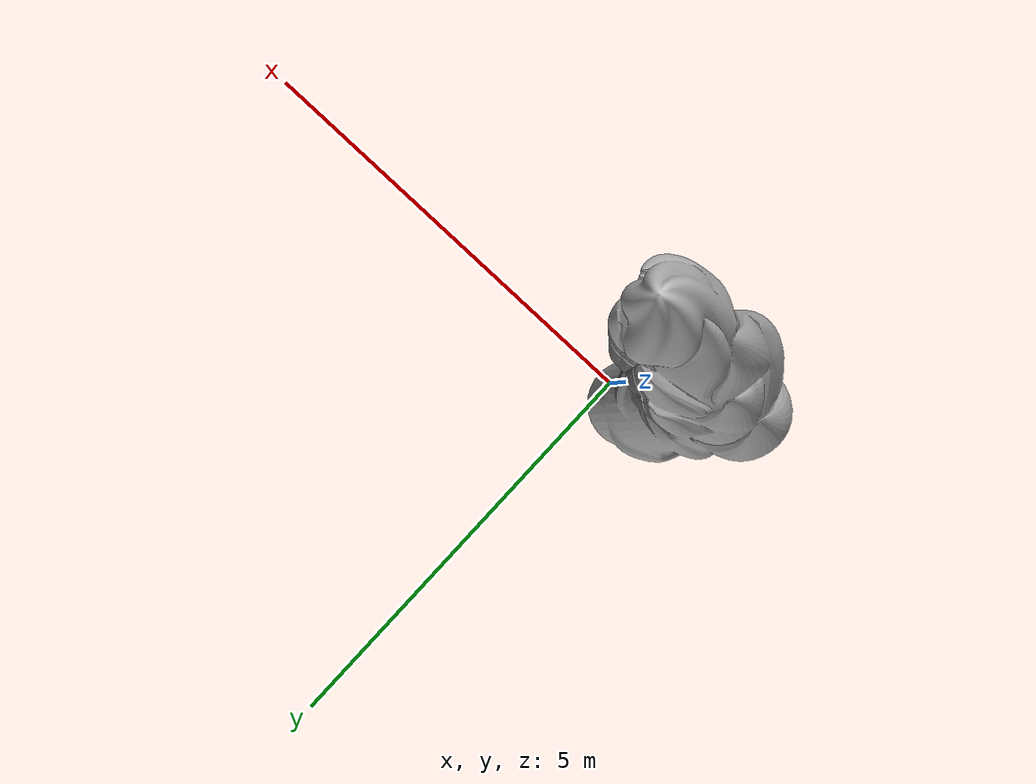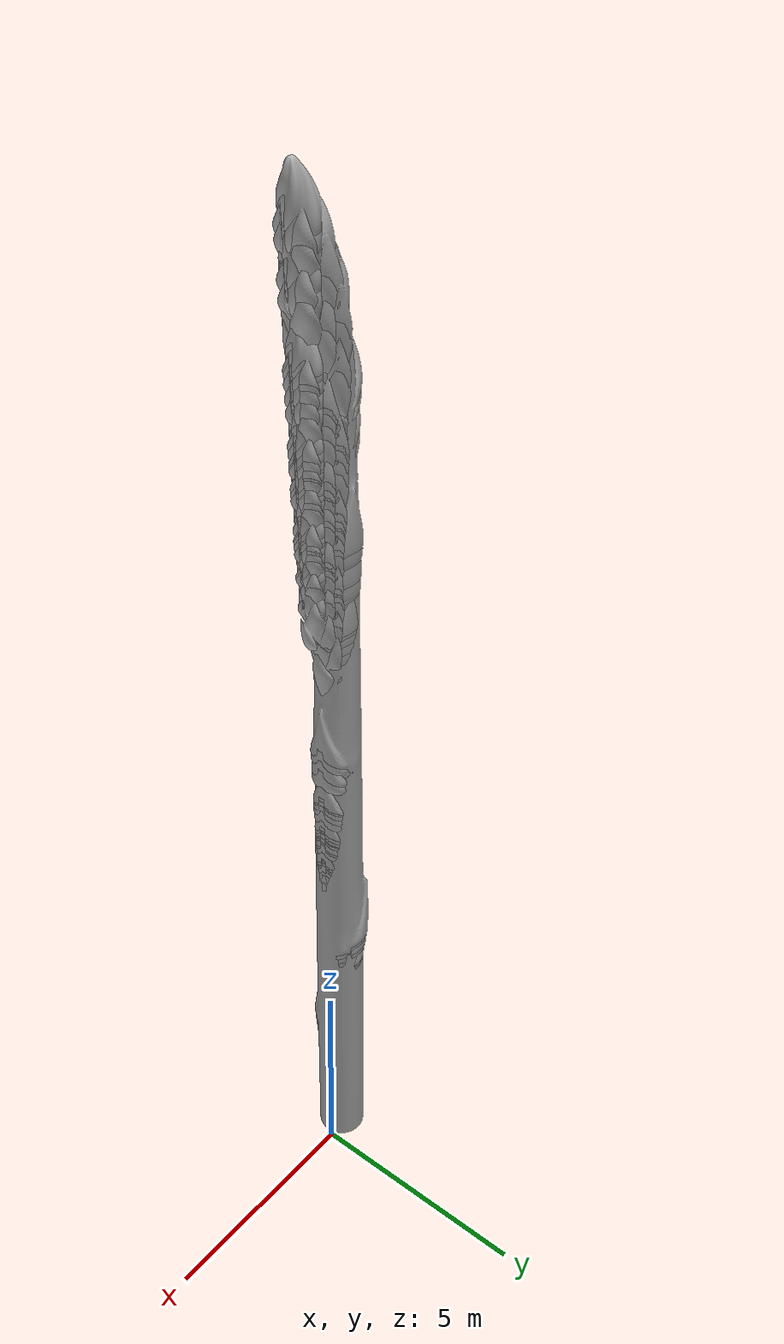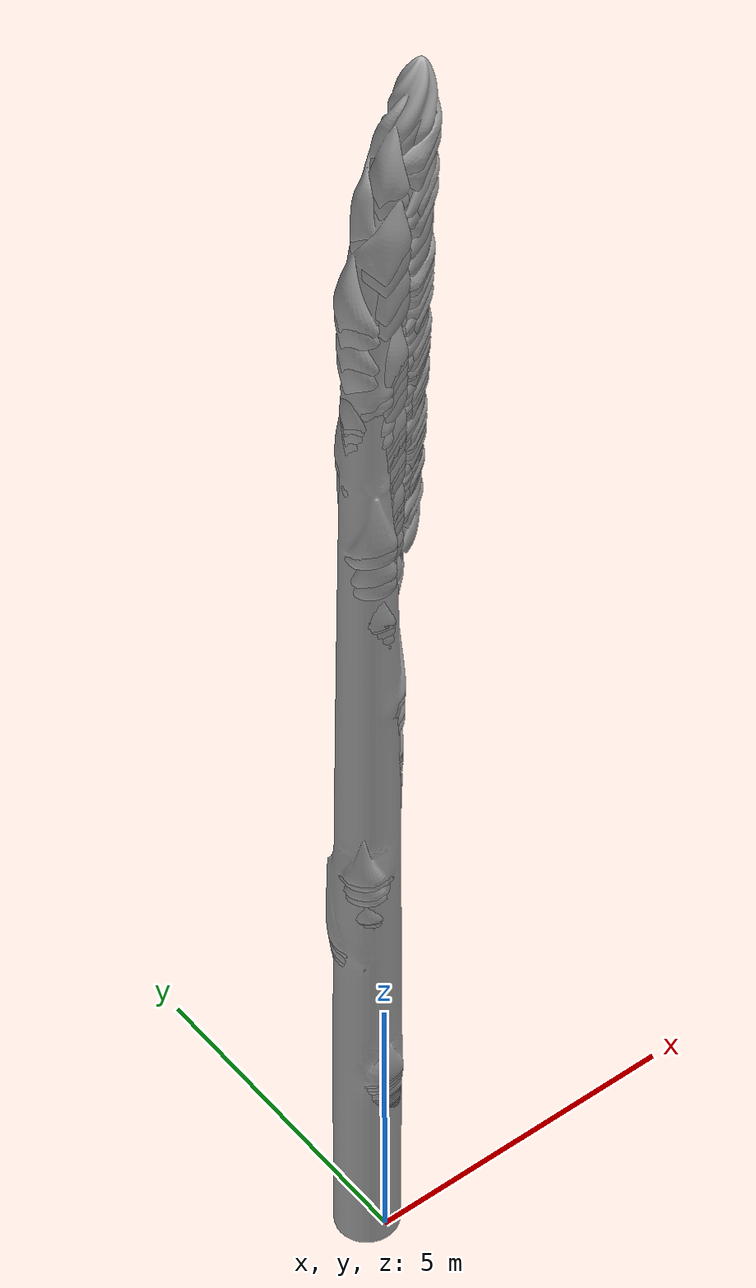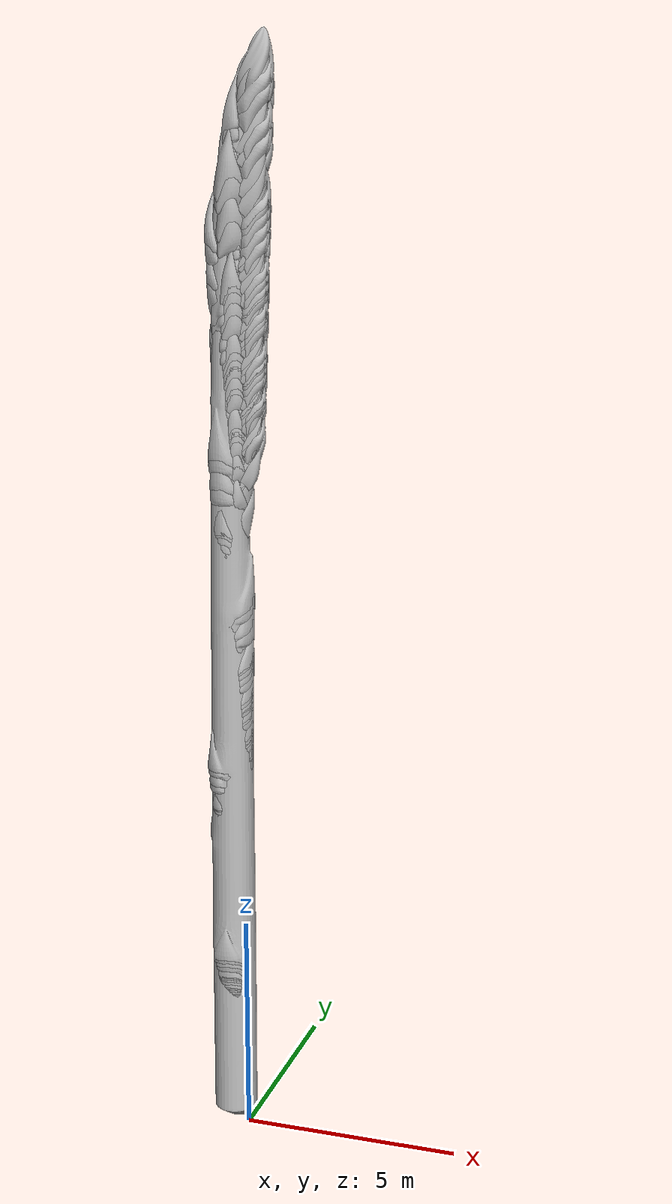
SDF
<sdf version="1.6">
 <world name="default">
  <model name="asparagus_25">
   <static>1</static>
   <link name="asparagus_25">
    <visual name="visual">
     <geometry>
      <mesh>
       <uri>home/adeeb/asparagus_ws/src/models/Asparagus/meshes/asparagus.obj</uri>
       <scale>0.960044 0.960044 0.960044</scale>
      </mesh>
     </geometry>
    </visual>
    <collision name="collision">
     <geometry>
      <mesh>
       <uri>home/adeeb/asparagus_ws/src/models/Asparagus/meshes/asparagus.obj</uri>
       <scale>0.960044 0.960044 0.960044</scale>
      </mesh>
     </geometry>
    </collision>
   </link>
  </model>
  <model name="asparagus_26">
   <static>1</static>
   <link name="asparagus_26">
    <visual name="visual">
     <geometry>
      <mesh>
       <uri>home/adeeb/asparagus_ws/src/models/Asparagus/meshes/asparagus.obj</uri>
       <scale>0.939981 0.939981 0.939981</scale>
      </mesh>
     </geometry>
    </visual>
    <collision name="collision">
     <geometry>
      <mesh>
       <uri>home/adeeb/asparagus_ws/src/models/Asparagus/meshes/asparagus.obj</uri>
       <scale>0.939981 0.939981 0.939981</scale>
      </mesh>
     </geometry>
    </collision>
   </link>
  </model>
  <model name="asparagus_27">
   <static>1</static>
   <link name="asparagus_27">
    <visual name="visual">
     <geometry>
      <mesh>
       <uri>home/adeeb/asparagus_ws/src/models/Asparagus/meshes/asparagus.obj</uri>
       <scale>1.11448 1.11448 1.11448</scale>
      </mesh>
     </geometry>
    </visual>
    <collision name="collision">
     <geometry>
      <mesh>
       <uri>home/adeeb/asparagus_ws/src/models/Asparagus/meshes/asparagus.obj</uri>
       <scale>1.11448 1.11448 1.11448</scale>
      </mesh>
     </geometry>
    </collision>
   </link>
  </model>
  <model name="asparagus_28">
   <static>1</static>
   <link name="asparagus_28">
    <visual name="visual">
     <geometry>
      <mesh>
       <uri>home/adeeb/asparagus_ws/src/models/Asparagus/meshes/asparagus.obj</uri>
       <scale>1.16445 1.16445 1.16445</scale>
      </mesh>
     </geometry>
    </visual>
    <collision name="collision">
     <geometry>
      <mesh>
       <uri>home/adeeb/asparagus_ws/src/models/Asparagus/meshes/asparagus.obj</uri>
       <scale>1.16445 1.16445 1.16445</scale>
      </mesh>
     </geometry>
    </collision>
   </link>
  </model>
  <model name="asparagus_29">
   <static>1</static>
   <link name="asparagus_29">
    <visual name="visual">
     <geometry>
      <mesh>
       <uri>home/adeeb/asparagus_ws/src/models/Asparagus/meshes/asparagus.obj</uri>
       <scale>1.05025 1.05025 1.05025</scale>
      </mesh>
     </geometry>
    </visual>
    <collision name="collision">
     <geometry>
      <mesh>
       <uri>home/adeeb/asparagus_ws/src/models/Asparagus/meshes/asparagus.obj</uri>
       <scale>1.05025 1.05025 1.05025</scale>
      </mesh>
     </geometry>
    </collision>
   </link>
  </model>
  <model name="asparagus_30">
   <static>1</static>
   <link name="asparagus_30">
    <visual name="visual">
     <geometry>
      <mesh>
       <uri>home/adeeb/asparagus_ws/src/models/Asparagus/meshes/asparagus.obj</uri>
       <scale>0.92768 0.92768 0.92768</scale>
      </mesh>
     </geometry>
    </visual>
    <collision name="collision">
     <geometry>
      <mesh>
       <uri>home/adeeb/asparagus_ws/src/models/Asparagus/meshes/asparagus.obj</uri>
       <scale>0.92768 0.92768 0.92768</scale>
      </mesh>
     </geometry>
    </collision>
   </link>
  </model>
  <model name="asparagus_31">
   <static>1</static>
   <link name="asparagus_31">
    <visual name="visual">
     <geometry>
      <mesh>
       <uri>home/adeeb/asparagus_ws/src/models/Asparagus/meshes/asparagus.obj</uri>
       <scale>1.02673 1.02673 1.02673</scale>
      </mesh>
     </geometry>
    </visual>
    <collision name="collision">
     <geometry>
      <mesh>
       <uri>home/adeeb/asparagus_ws/src/models/Asparagus/meshes/asparagus.obj</uri>
       <scale>1.02673 1.02673 1.02673</scale>
      </mesh>
     </geometry>
    </collision>
   </link>
  </model>
  <model name="asparagus_32">
   <static>1</static>
   <link name="asparagus_32">
    <visual name="visual">
     <geometry>
      <mesh>
       <uri>home/adeeb/asparagus_ws/src/models/Asparagus/meshes/asparagus.obj</uri>
       <scale>1.013 1.013 1.013</scale>
      </mesh>
     </geometry>
    </visual>
    <collision name="collision">
     <geometry>
      <mesh>
       <uri>home/adeeb/asparagus_ws/src/models/Asparagus/meshes/asparagus.obj</uri>
       <scale>1.013 1.013 1.013</scale>
      </mesh>
     </geometry>
    </collision>
   </link>
  </model>
  <model name="asparagus_33">
   <static>1</static>
   <link name="asparagus_33">
    <visual name="visual">
     <geometry>
      <mesh>
       <uri>home/adeeb/asparagus_ws/src/models/Asparagus/meshes/asparagus.obj</uri>
       <scale>0.812996 0.812996 0.812996</scale>
      </mesh>
     </geometry>
    </visual>
    <collision name="collision">
     <geometry>
      <mesh>
       <uri>home/adeeb/asparagus_ws/src/models/Asparagus/meshes/asparagus.obj</uri>
       <scale>0.812996 0.812996 0.812996</scale>
      </mesh>
     </geometry>
    </collision>
   </link>
  </model>
  <model name="asparagus_34">
   <static>1</static>
   <link name="asparagus_34">
    <visual name="visual">
     <geometry>
      <mesh>
       <uri>home/adeeb/asparagus_ws/src/models/Asparagus/meshes/asparagus.obj</uri>
       <scale>0.879051 0.879051 0.879051</scale>
      </mesh>
     </geometry>
    </visual>
    <collision name="collision">
     <geometry>
      <mesh>
       <uri>home/adeeb/asparagus_ws/src/models/Asparagus/meshes/asparagus.obj</uri>
       <scale>0.879051 0.879051 0.879051</scale>
      </mesh>
     </geometry>
    </collision>
   </link>
  </model>
  <model name="asparagus_35">
   <static>1</static>
   <link name="asparagus_35">
    <visual name="visual">
     <geometry>
      <mesh>
       <uri>home/adeeb/asparagus_ws/src/models/Asparagus/meshes/asparagus.obj</uri>
       <scale>1.05296 1.05296 1.05296</scale>
      </mesh>
     </geometry>
    </visual>
    <collision name="collision">
     <geometry>
      <mesh>
       <uri>home/adeeb/asparagus_ws/src/models/Asparagus/meshes/asparagus.obj</uri>
       <scale>1.05296 1.05296 1.05296</scale>
      </mesh>
     </geometry>
    </collision>
   </link>
  </model>
  <model name="asparagus_36">
   <static>1</static>
   <link name="asparagus_36">
    <visual name="visual">
     <geometry>
      <mesh>
       <uri>home/adeeb/asparagus_ws/src/models/Asparagus/meshes/asparagus.obj</uri>
       <scale>0.958204 0.958204 0.958204</scale>
      </mesh>
     </geometry>
    </visual>
    <collision name="collision">
     <geometry>
      <mesh>
       <uri>home/adeeb/asparagus_ws/src/models/Asparagus/meshes/asparagus.obj</uri>
       <scale>0.958204 0.958204 0.958204</scale>
      </mesh>
     </geometry>
    </collision>
   </link>
  </model>
  <model name="asparagus_37">
   <static>1</static>
   <link name="asparagus_37">
    <visual name="visual">
     <geometry>
      <mesh>
       <uri>home/adeeb/asparagus_ws/src/models/Asparagus/meshes/asparagus.obj</uri>
       <scale>0.981778 0.981778 0.981778</scale>
      </mesh>
     </geometry>
    </visual>
    <collision name="collision">
     <geometry>
      <mesh>
       <uri>home/adeeb/asparagus_ws/src/models/Asparagus/meshes/asparagus.obj</uri>
       <scale>0.981778 0.981778 0.981778</scale>
      </mesh>
     </geometry>
    </collision>
   </link>
  </model>
  <model name="asparagus_38">
   <static>1</static>
   <link name="asparagus_38">
    <visual name="visual">
     <geometry>
      <mesh>
       <uri>home/adeeb/asparagus_ws/src/models/Asparagus/meshes/asparagus.obj</uri>
       <scale>0.886178 0.886178 0.886178</scale>
      </mesh>
     </geometry>
    </visual>
    <collision name="collision">
     <geometry>
      <mesh>
       <uri>home/adeeb/asparagus_ws/src/models/Asparagus/meshes/asparagus.obj</uri>
       <scale>0.886178 0.886178 0.886178</scale>
      </mesh>
     </geometry>
    </collision>
   </link>
  </model>
  <model name="asparagus_39">
   <static>1</static>
   <link name="asparagus_39">
    <visual name="visual">
     <geometry>
      <mesh>
       <uri>home/adeeb/asparagus_ws/src/models/Asparagus/meshes/asparagus.obj</uri>
       <scale>0.845428 0.845428 0.845428</scale>
      </mesh>
     </geometry>
    </visual>
    <collision name="collision">
     <geometry>
      <mesh>
       <uri>home/adeeb/asparagus_ws/src/models/Asparagus/meshes/asparagus.obj</uri>
       <scale>0.845428 0.845428 0.845428</scale>
      </mesh>
     </geometry>
    </collision>
   </link>
  </model>
  <model name="asparagus_40">
   <static>1</static>
   <link name="asparagus_40">
    <visual name="visual">
     <geometry>
      <mesh>
       <uri>home/adeeb/asparagus_ws/src/models/Asparagus/meshes/asparagus.obj</uri>
       <scale>0.963687 0.963687 0.963687</scale>
      </mesh>
     </geometry>
    </visual>
    <collision name="collision">
     <geometry>
      <mesh>
       <uri>home/adeeb/asparagus_ws/src/models/Asparagus/meshes/asparagus.obj</uri>
       <scale>0.963687 0.963687 0.963687</scale>
      </mesh>
     </geometry>
    </collision>
   </link>
  </model>
  <model name="asparagus_41">
   <static>1</static>
   <link name="asparagus_41">
    <visual name="visual">
     <geometry>
      <mesh>
       <uri>home/adeeb/asparagus_ws/src/models/Asparagus/meshes/asparagus.obj</uri>
       <scale>1.17698 1.17698 1.17698</scale>
      </mesh>
     </geometry>
    </visual>
    <collision name="collision">
     <geometry>
      <mesh>
       <uri>home/adeeb/asparagus_ws/src/models/Asparagus/meshes/asparagus.obj</uri>
       <scale>1.17698 1.17698 1.17698</scale>
      </mesh>
     </geometry>
    </collision>
   </link>
  </model>
  <model name="asparagus_42">
   <static>1</static>
   <link name="asparagus_42">
    <visual name="visual">
     <geometry>
      <mesh>
       <uri>home/adeeb/asparagus_ws/src/models/Asparagus/meshes/asparagus.obj</uri>
       <scale>0.871758 0.871758 0.871758</scale>
      </mesh>
     </geometry>
    </visual>
    <collision name="collision">
     <geometry>
      <mesh>
       <uri>home/adeeb/asparagus_ws/src/models/Asparagus/meshes/asparagus.obj</uri>
       <scale>0.871758 0.871758 0.871758</scale>
      </mesh>
     </geometry>
    </collision>
   </link>
  </model>
  <model name="asparagus_43">
   <static>1</static>
   <link name="asparagus_43">
    <visual name="visual">
     <geometry>
      <mesh>
       <uri>home/adeeb/asparagus_ws/src/models/Asparagus/meshes/asparagus.obj</uri>
       <scale>0.847222 0.847222 0.847222</scale>
      </mesh>
     </geometry>
    </visual>
    <collision name="collision">
     <geometry>
      <mesh>
       <uri>home/adeeb/asparagus_ws/src/models/Asparagus/meshes/asparagus.obj</uri>
       <scale>0.847222 0.847222 0.847222</scale>
      </mesh>
     </geometry>
    </collision>
   </link>
  </model>
  <model name="asparagus_44">
   <static>1</static>
   <link name="asparagus_44">
    <visual name="visual">
     <geometry>
      <mesh>
       <uri>home/adeeb/asparagus_ws/src/models/Asparagus/meshes/asparagus.obj</uri>
       <scale>1.13191 1.13191 1.13191</scale>
      </mesh>
     </geometry>
    </visual>
    <collision name="collision">
     <geometry>
      <mesh>
       <uri>home/adeeb/asparagus_ws/src/models/Asparagus/meshes/asparagus.obj</uri>
       <scale>1.13191 1.13191 1.13191</scale>
      </mesh>
     </geometry>
    </collision>
   </link>
  </model>
  <model name="asparagus_45">
   <static>1</static>
   <link name="asparagus_45">
    <visual name="visual">
     <geometry>
      <mesh>
       <uri>home/adeeb/asparagus_ws/src/models/Asparagus/meshes/asparagus.obj</uri>
       <scale>0.933475 0.933475 0.933475</scale>
      </mesh>
     </geometry>
    </visual>
    <collision name="collision">
     <geometry>
      <mesh>
       <uri>home/adeeb/asparagus_ws/src/models/Asparagus/meshes/asparagus.obj</uri>
       <scale>0.933475 0.933475 0.933475</scale>
      </mesh>
     </geometry>
    </collision>
   </link>
  </model>
  <model name="asparagus_46">
   <static>1</static>
   <link name="asparagus_46">
    <visual name="visual">
     <geometry>
      <mesh>
       <uri>home/adeeb/asparagus_ws/src/models/Asparagus/meshes/asparagus.obj</uri>
       <scale>0.974548 0.974548 0.974548</scale>
      </mesh>
     </geometry>
    </visual>
    <collision name="collision">
     <geometry>
      <mesh>
       <uri>home/adeeb/asparagus_ws/src/models/Asparagus/meshes/asparagus.obj</uri>
       <scale>0.974548 0.974548 0.974548</scale>
      </mesh>
     </geometry>
    </collision>
   </link>
  </model>
  <model name="asparagus_47">
   <static>1</static>
   <link name="asparagus_47">
    <visual name="visual">
     <geometry>
      <mesh>
       <uri>home/adeeb/asparagus_ws/src/models/Asparagus/meshes/asparagus.obj</uri>
       <scale>1.04045 1.04045 1.04045</scale>
      </mesh>
     </geometry>
    </visual>
    <collision name="collision">
     <geometry>
      <mesh>
       <uri>home/adeeb/asparagus_ws/src/models/Asparagus/meshes/asparagus.obj</uri>
       <scale>1.04045 1.04045 1.04045</scale>
      </mesh>
     </geometry>
    </collision>
   </link>
  </model>
  <model name="asparagus_48">
   <static>1</static>
   <link name="asparagus_48">
    <visual name="visual">
     <geometry>
      <mesh>
       <uri>home/adeeb/asparagus_ws/src/models/Asparagus/meshes/asparagus.obj</uri>
       <scale>0.897144 0.897144 0.897144</scale>
      </mesh>
     </geometry>
    </visual>
    <collision name="collision">
     <geometry>
      <mesh>
       <uri>home/adeeb/asparagus_ws/src/models/Asparagus/meshes/asparagus.obj</uri>
       <scale>0.897144 0.897144 0.897144</scale>
      </mesh>
     </geometry>
    </collision>
   </link>
  </model>
  <model name="asparagus_49">
   <static>1</static>
   <link name="asparagus_49">
    <visual name="visual">
     <geometry>
      <mesh>
       <uri>home/adeeb/asparagus_ws/src/models/Asparagus/meshes/asparagus.obj</uri>
       <scale>0.885888 0.885888 0.885888</scale>
      </mesh>
     </geometry>
    </visual>
    <collision name="collision">
     <geometry>
      <mesh>
       <uri>home/adeeb/asparagus_ws/src/models/Asparagus/meshes/asparagus.obj</uri>
       <scale>0.885888 0.885888 0.885888</scale>
      </mesh>
     </geometry>
    </collision>
   </link>
  </model>
 </world>
</sdf>
